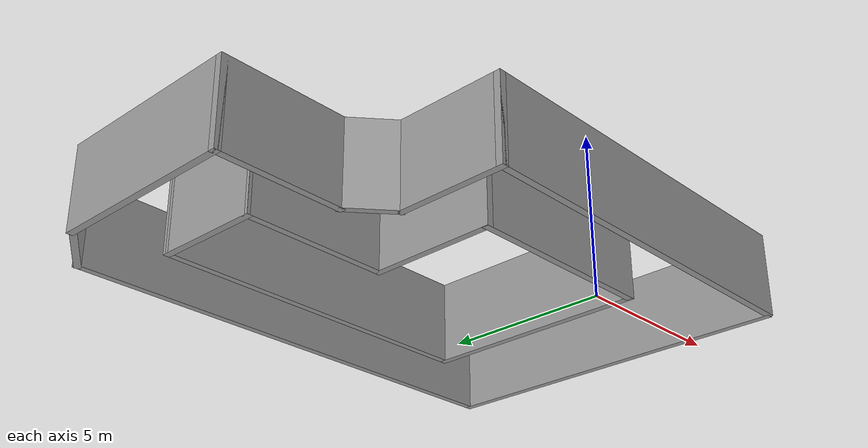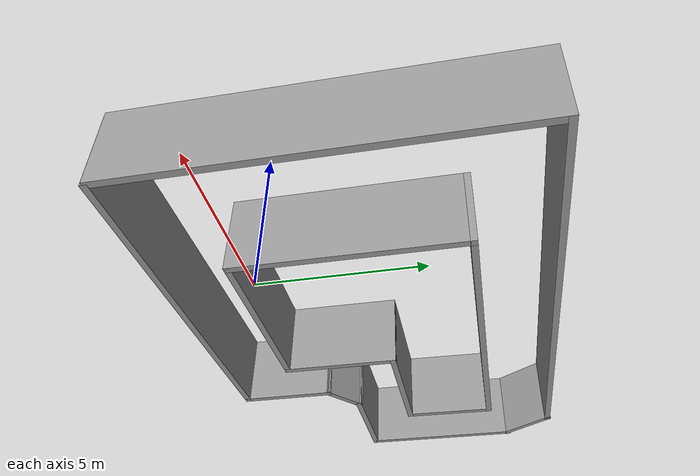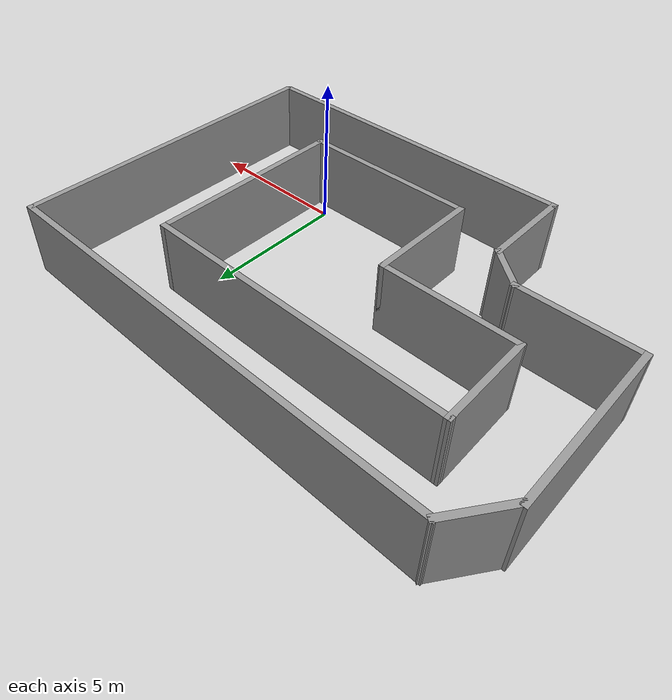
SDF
<?xml version='1.0'?>
<sdf version='1.4'>
  <model name='simpleTrack'>
    <link name='Wall_0'>
      <collision name='Wall_0_Collision'>
        <geometry>
          <box>
            <size>4.5659 0.2 2.5</size>
          </box>
        </geometry>
        <pose>0 0 1.25 0 -0 0</pose>
      </collision>
      <visual name='Wall_0_Visual'>
        <pose>0 0 1.25 0 -0 0</pose>
        <geometry>
          <box>
            <size>4.5659 0.2 2.5</size>
          </box>
        </geometry>
        <material>
          <script>
            <uri>file://media/materials/scripts/gazebo.material</uri>
            <name>Gazebo/Grey</name>
          </script>
        </material>
      </visual>
      <velocity_decay>
        <linear>0</linear>
        <angular>0</angular>
      </velocity_decay>
      <pose>-7.26275 3.19307 0 0 -0 0</pose>
    </link>
    <link name='Wall_1'>
      <collision name='Wall_1_Collision'>
        <geometry>
          <box>
            <size>3.91916 0.2 2.5</size>
          </box>
        </geometry>
        <pose>0 0 1.25 0 -0 0</pose>
      </collision>
      <visual name='Wall_1_Visual'>
        <pose>0 0 1.25 0 -0 0</pose>
        <geometry>
          <box>
            <size>3.91916 0.2 2.5</size>
          </box>
        </geometry>
        <material>
          <script>
            <uri>file://media/materials/scripts/gazebo.material</uri>
            <name>Gazebo/Grey</name>
          </script>
        </material>
      </visual>
      <velocity_decay>
        <linear>0</linear>
        <angular>0</angular>
      </velocity_decay>
      <pose>-5.0798 1.33349 0 0 0 -1.5708</pose>
    </link>
    <link name='Wall_12'>
      <collision name='Wall_12_Collision'>
        <geometry>
          <box>
            <size>2.10733 0.2 2.5</size>
          </box>
        </geometry>
        <pose>0 0 1.25 0 -0 0</pose>
      </collision>
      <visual name='Wall_12_Visual'>
        <pose>0 0 1.25 0 -0 0</pose>
        <geometry>
          <box>
            <size>2.10733 0.2 2.5</size>
          </box>
        </geometry>
        <material>
          <script>
            <uri>file://media/materials/scripts/gazebo.material</uri>
            <name>Gazebo/Grey</name>
          </script>
        </material>
      </visual>
      <velocity_decay>
        <linear>0</linear>
        <angular>0</angular>
      </velocity_decay>
      <pose>-11.238 7.7627 0 0 -0 0.953041</pose>
    </link>
    <link name='Wall_13'>
      <collision name='Wall_13_Collision'>
        <geometry>
          <box>
            <size>15.339 0.2 2.5</size>
          </box>
        </geometry>
        <pose>0 0 1.25 0 -0 0</pose>
      </collision>
      <visual name='Wall_13_Visual'>
        <pose>0 0 1.25 0 -0 0</pose>
        <geometry>
          <box>
            <size>15.339 0.2 2.5</size>
          </box>
        </geometry>
        <material>
          <script>
            <uri>file://media/materials/scripts/gazebo.material</uri>
            <name>Gazebo/Grey</name>
          </script>
        </material>
      </visual>
      <velocity_decay>
        <linear>0</linear>
        <angular>0</angular>
      </velocity_decay>
      <pose>-3.11606 8.54011 0 0 -0 0</pose>
    </link>
    <link name='Wall_14'>
      <collision name='Wall_14_Collision'>
        <geometry>
          <box>
            <size>11.3292 0.2 2.5</size>
          </box>
        </geometry>
        <pose>0 0 1.25 0 -0 0</pose>
      </collision>
      <visual name='Wall_14_Visual'>
        <pose>0 0 1.25 0 -0 0</pose>
        <geometry>
          <box>
            <size>11.3292 0.2 2.5</size>
          </box>
        </geometry>
        <material>
          <script>
            <uri>file://media/materials/scripts/gazebo.material</uri>
            <name>Gazebo/Grey</name>
          </script>
        </material>
      </visual>
      <velocity_decay>
        <linear>0</linear>
        <angular>0</angular>
      </velocity_decay>
      <pose>4.45346 2.97548 0 0 0 -1.5708</pose>
    </link>
    <link name='Wall_16'>
      <collision name='Wall_16_Collision'>
        <geometry>
          <box>
            <size>5.80554 0.2 2.5</size>
          </box>
        </geometry>
        <pose>0 0 1.25 0 -0 0</pose>
      </collision>
      <visual name='Wall_16_Visual'>
        <pose>0 0 1.25 0 -0 0</pose>
        <geometry>
          <box>
            <size>5.80554 0.2 2.5</size>
          </box>
        </geometry>
        <material>
          <script>
            <uri>file://media/materials/scripts/gazebo.material</uri>
            <name>Gazebo/Grey</name>
          </script>
        </material>
      </visual>
      <velocity_decay>
        <linear>0</linear>
        <angular>0</angular>
      </velocity_decay>
      <pose>-11.8312 4.18252 0 0 0 -1.5708</pose>
    </link>
    <link name='Wall_17'>
      <collision name='Wall_17_Collision'>
        <geometry>
          <box>
            <size>3.88247 0.2 2.5</size>
          </box>
        </geometry>
        <pose>0 0 1.25 0 -0 0</pose>
      </collision>
      <visual name='Wall_17_Visual'>
        <pose>0 0 1.25 0 -0 0</pose>
        <geometry>
          <box>
            <size>3.88247 0.2 2.5</size>
          </box>
        </geometry>
        <material>
          <script>
            <uri>file://media/materials/scripts/gazebo.material</uri>
            <name>Gazebo/Grey</name>
          </script>
        </material>
      </visual>
      <velocity_decay>
        <linear>0</linear>
        <angular>0</angular>
      </velocity_decay>
      <pose>-9.99001 1.37975 0 0 -0 0</pose>
    </link>
    <link name='Wall_18'>
      <collision name='Wall_18_Collision'>
        <geometry>
          <box>
            <size>1.65123 0.2 2.5</size>
          </box>
        </geometry>
        <pose>0 0 1.25 0 -0 0</pose>
      </collision>
      <visual name='Wall_18_Visual'>
        <pose>0 0 1.25 0 -0 0</pose>
        <geometry>
          <box>
            <size>1.65123 0.2 2.5</size>
          </box>
        </geometry>
        <material>
          <script>
            <uri>file://media/materials/scripts/gazebo.material</uri>
            <name>Gazebo/Grey</name>
          </script>
        </material>
      </visual>
      <velocity_decay>
        <linear>0</linear>
        <angular>0</angular>
      </velocity_decay>
      <pose>-7.5964 0.909208 0 0 0 -0.705568</pose>
    </link>
    <link name='Wall_19'>
      <collision name='Wall_19_Collision'>
        <geometry>
          <box>
            <size>3.30964 0.2 2.5</size>
          </box>
        </geometry>
        <pose>0 0 1.25 0 -0 0</pose>
      </collision>
      <visual name='Wall_19_Visual'>
        <pose>0 0 1.25 0 -0 0</pose>
        <geometry>
          <box>
            <size>3.30964 0.2 2.5</size>
          </box>
        </geometry>
        <material>
          <script>
            <uri>file://media/materials/scripts/gazebo.material</uri>
            <name>Gazebo/Grey</name>
          </script>
        </material>
      </visual>
      <velocity_decay>
        <linear>0</linear>
        <angular>0</angular>
      </velocity_decay>
      <pose>-7.04403 -1.11615 0 0 0 -1.5708</pose>
    </link>
    <link name='Wall_2'>
      <collision name='Wall_2_Collision'>
        <geometry>
          <box>
            <size>6.03982 0.2 2.5</size>
          </box>
        </geometry>
        <pose>0 0 1.25 0 -0 0</pose>
      </collision>
      <visual name='Wall_2_Visual'>
        <pose>0 0 1.25 0 -0 0</pose>
        <geometry>
          <box>
            <size>6.03982 0.2 2.5</size>
          </box>
        </geometry>
        <material>
          <script>
            <uri>file://media/materials/scripts/gazebo.material</uri>
            <name>Gazebo/Grey</name>
          </script>
        </material>
      </visual>
      <velocity_decay>
        <linear>0</linear>
        <angular>0</angular>
      </velocity_decay>
      <pose>-2.15989 -0.526087 0 0 -0 0</pose>
    </link>
    <link name='Wall_20'>
      <collision name='Wall_20_Collision'>
        <geometry>
          <box>
            <size>11.6157 0.2 2.5</size>
          </box>
        </geometry>
        <pose>0 0 1.25 0 -0 0</pose>
      </collision>
      <visual name='Wall_20_Visual'>
        <pose>0 0 1.25 0 -0 0</pose>
        <geometry>
          <box>
            <size>11.6157 0.2 2.5</size>
          </box>
        </geometry>
        <material>
          <script>
            <uri>file://media/materials/scripts/gazebo.material</uri>
            <name>Gazebo/Grey</name>
          </script>
        </material>
      </visual>
      <velocity_decay>
        <linear>0</linear>
        <angular>0</angular>
      </velocity_decay>
      <pose>-1.3362 -2.67097 0 0 -0 0</pose>
    </link>
    <link name='Wall_3'>
      <collision name='Wall_3_Collision'>
        <geometry>
          <box>
            <size>6.99567 0.2 2.5</size>
          </box>
        </geometry>
        <pose>0 0 1.25 0 -0 0</pose>
      </collision>
      <visual name='Wall_3_Visual'>
        <pose>0 0 1.25 0 -0 0</pose>
        <geometry>
          <box>
            <size>6.99567 0.2 2.5</size>
          </box>
        </geometry>
        <material>
          <script>
            <uri>file://media/materials/scripts/gazebo.material</uri>
            <name>Gazebo/Grey</name>
          </script>
        </material>
      </visual>
      <velocity_decay>
        <linear>0</linear>
        <angular>0</angular>
      </velocity_decay>
      <pose>0.76002 2.87175 0 0 -0 1.5708</pose>
    </link>
    <link name='Wall_4'>
      <collision name='Wall_4_Collision'>
        <geometry>
          <box>
            <size>10.4469 0.2 2.5</size>
          </box>
        </geometry>
        <pose>0 0 1.25 0 -0 0</pose>
      </collision>
      <visual name='Wall_4_Visual'>
        <pose>0 0 1.25 0 -0 0</pose>
        <geometry>
          <box>
            <size>10.4469 0.2 2.5</size>
          </box>
        </geometry>
        <material>
          <script>
            <uri>file://media/materials/scripts/gazebo.material</uri>
            <name>Gazebo/Grey</name>
          </script>
        </material>
      </visual>
      <velocity_decay>
        <linear>0</linear>
        <angular>0</angular>
      </velocity_decay>
      <pose>-4.36342 6.26958 0 0 -0 3.14159</pose>
    </link>
    <link name='Wall_5'>
      <collision name='Wall_5_Collision'>
        <geometry>
          <box>
            <size>3.27679 0.2 2.5</size>
          </box>
        </geometry>
        <pose>0 0 1.25 0 -0 0</pose>
      </collision>
      <visual name='Wall_5_Visual'>
        <pose>0 0 1.25 0 -0 0</pose>
        <geometry>
          <box>
            <size>3.27679 0.2 2.5</size>
          </box>
        </geometry>
        <material>
          <script>
            <uri>file://media/materials/scripts/gazebo.material</uri>
            <name>Gazebo/Grey</name>
          </script>
        </material>
      </visual>
      <velocity_decay>
        <linear>0</linear>
        <angular>0</angular>
      </velocity_decay>
      <pose>-9.46628 4.73133 0 0 0 -1.55742</pose>
    </link>
    <static>1</static>
  </model>
</sdf>
